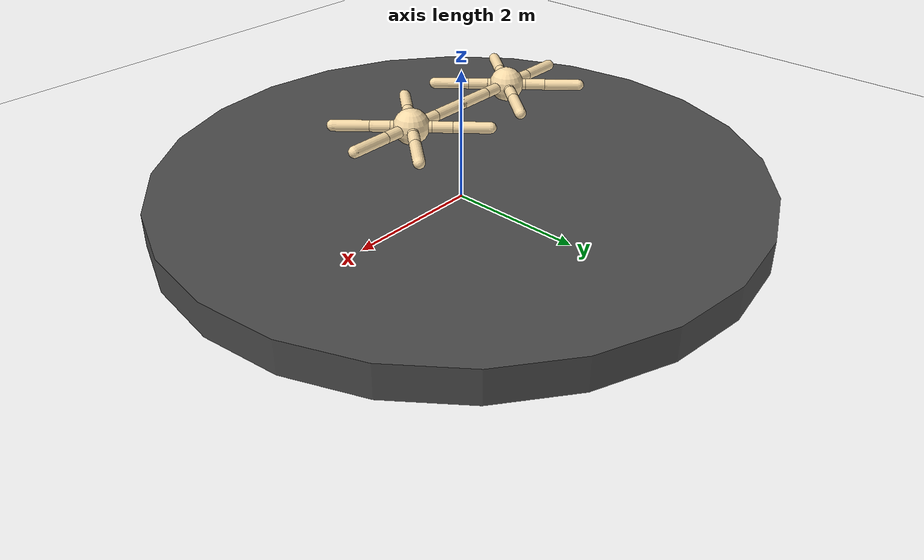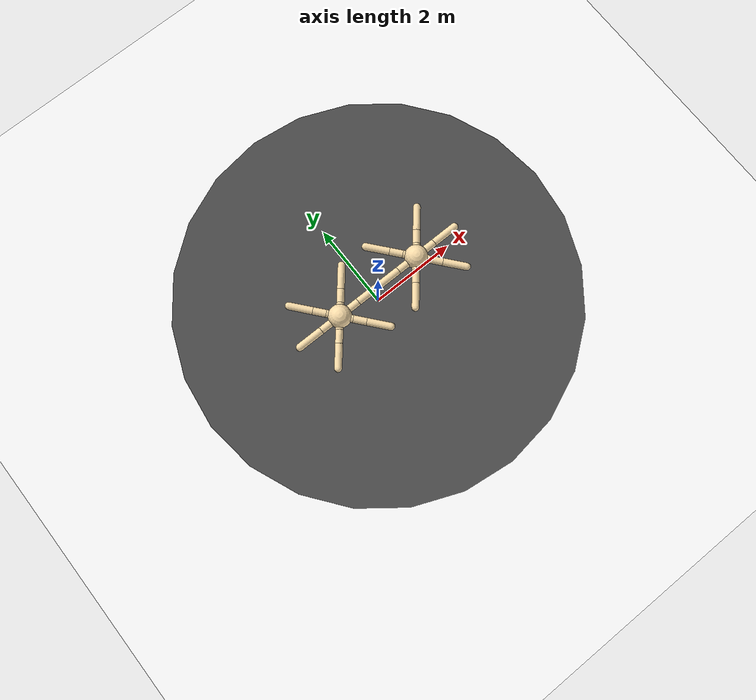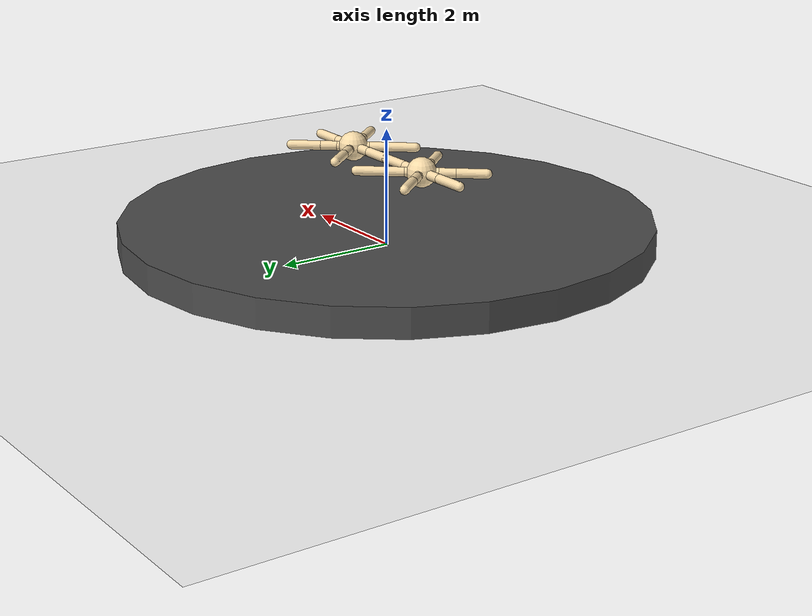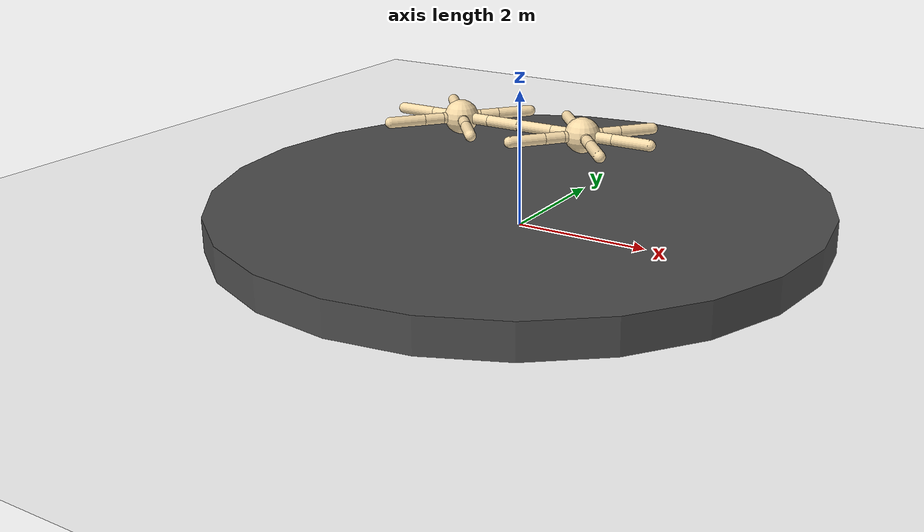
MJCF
<mujoco model="mutiagent_world">
  <compiler angle="degree" coordinate="local" inertiafromgeom="true" />
  <option integrator="RK4" timestep="0.003" solver="PGS" iterations="1000" />
  <default>
    <joint armature="1" damping="1" limited="true" />
  <default class="agent0"><geom conaffinity="0" condim="3" density="5.0" friction="1 0.5 0.5" margin="0.01" rgba="0.98 0.87 0.67 1" material="geom" contype="1" />
    <motor ctrllimited="true" ctrlrange="-1. 1." />
    <joint armature="1" damping="1" limited="true" />
  </default><default class="agent1"><geom conaffinity="1" condim="3" density="5.0" friction="1 0.5 0.5" margin="0.01" rgba="0.98 0.87 0.67 1" material="geom" contype="0" />
    <motor ctrllimited="true" ctrlrange="-1. 1." />
    <joint armature="1" damping="1" limited="true" />
  </default></default>
  <visual>
    <headlight ambient=".1 .1 .1" diffuse=".6 .6 .6" specular="0.3 0.3 0.3" />
    <map znear=".01" />
    <quality shadowsize="16384" />
  </visual>
  <asset>
    <texture builtin="gradient" height="100" rgb1="1 1 1" rgb2="0 0 0" type="skybox" width="100" />
    <texture builtin="flat" height="1278" mark="cross" markrgb="0 0 0" name="texgeom" random="0.01" rgb1="0.8 0.6 0.4" rgb2="0.8 0.6 0.4" type="cube" width="127" />
    <texture builtin="checker" height="100" name="texplane" rgb1="0.5 0.5 0.5" rgb2="0.5 0.5 0.5" type="2d" width="100" markrgb="0.2 0.2 0.2" mark="edge" />
    <texture name="MatPlane" type="2d" builtin="checker" rgb1=".5 .5 .5" rgb2=".5 .5 .5" width="300" height="300" mark="edge" markrgb="0.1 0.1 0.1" />
    <material name="MatPlane" texture="MatPlane" texrepeat="2 2" texuniform="true" reflectance=".2" />
    <material name="geom" texture="texgeom" texuniform="true" />
  </asset>
  <worldbody>
    <light cutoff="100" diffuse="1 1 1" dir="-0 0 -1.3" directional="true" exponent="1" pos="0 0 1.3" specular=".1 .1 .1" />
    <geom contype="1" conaffinity="1" friction="1 .1 .1" condim="3" material="MatPlane" name="floor" pos="0 0 0" rgba="1 1 1 1" size="20 20 0.125" type="plane" />
    <geom fromto="4 -5 0  4 +5 0" name="rightgoal" rgba="0.6 0.0 0.0 0" size=".03" type="cylinder" />
    <geom fromto="-4 -5 0  -4 +5 0" name="leftgoal" rgba="0.6 0.0 0.0 0" size=".03" type="cylinder" />
    <geom conaffinity="1" condim="3" contype="1" friction="1 .1 .1" name="arena" size="4.5 .25" type="cylinder" pos="0 0 0.25" rgba="0.3 0.3 0.3 1" />
  <body name="agent0/0" pos="-1 0 1.5" euler="0 0 0">
      <geom pos="0 0 0" size="0.25" type="sphere" class="agent0" name="agent0/anon6612927343" />
      <joint armature="0" damping="0" limited="false" margin="0.01" name="agent0/0_joint" pos="0 0 0" type="free" />

      <body name="agent0/1" pos="0 0 0">
        <geom fromto="0 0 0 0.18 0.215 0" size="0.08" type="capsule" class="agent0" name="agent0/anon2520077080" />
        <body name="agent0/11" pos="0.18 0.215 0">
          <joint axis="0 0 1" name="agent0/11_joint" pos="0 0 0" range="-30 30" type="hinge" />
          <geom fromto="0 0 0 0.18 0.215 0" size="0.08" type="capsule" class="agent0" name="agent0/anon8440707289" />
          <body name="agent0/111" pos="0.18 0.215 0">
            <joint axis="-1 1 0" name="agent0/111_joint" pos="0 0 0" range="30 70" type="hinge" />
            <geom fromto="0 0 0 0.324 0.387 0" size="0.08" type="capsule" class="agent0" name="agent0/anon1272485021" />
          </body>
        </body>
      </body>

      <body name="agent0/2" pos="0 0 0">
        <geom fromto="0 0 0 -0.18 0.215 0" size="0.08" type="capsule" class="agent0" name="agent0/anon9299750701" />
        <body name="agent0/12" pos="-0.18 0.215 0">
          <joint axis="0 0 1" name="agent0/12_joint" pos="0 0 0" range="-30 30" type="hinge" />
          <geom fromto="0 0 0 -0.18 0.215 0" size="0.08" type="capsule" class="agent0" name="agent0/anon67157849" />
          <body name="agent0/112" pos="-0.18 0.215 0">
            <joint axis="1 1 0" name="agent0/112_joint" pos="0 0 0" range="-70 -30" type="hinge" />
            <geom fromto="0 0 0 -0.324 0.387 0" size="0.08" type="capsule" class="agent0" name="agent0/anon9443956211" />
          </body>
        </body>
      </body>

      <body name="agent0/3" pos="0 0 0">
        <geom fromto="0 0 0 -0.2 0 0" size="0.08" type="capsule" class="agent0" name="agent0/anon3055190408" />
        <body name="agent0/13" pos="-0.2 0 0">
          <joint axis="0 0 1" name="agent0/13_joint" pos="0 0 0" range="-30 30" type="hinge" />
          <geom fromto="0 0 0 -0.275 0 0" size="0.08" type="capsule" class="agent0" name="agent0/anon2602578299" />
          <body name="agent0/113" pos="-0.275 0 0">
            <joint axis="0 1 0" name="agent0/113_joint" pos="0 0 0" range="-70 -30" type="hinge" />
            <geom fromto="0 0 0 -0.55 0 0" size="0.08" type="capsule" class="agent0" name="agent0/anon3978431978" />
          </body>
        </body>
      </body>

      <body name="agent0/4" pos="0 0 0">
        <geom fromto="0 0 0 0.2 0 0" size="0.08" type="capsule" class="agent0" name="agent0/anon3929721884" />
        <body name="agent0/14" pos="0.2 0 0">
          <joint axis="0 0 1" name="agent0/14_joint" pos="0 0 0" range="-30 30" type="hinge" />
          <geom fromto="0 0 0 0.275 0 0" size="0.08" type="capsule" class="agent0" name="agent0/anon4704750625" />
          <body name="agent0/114" pos="0.275 0 0">
            <joint axis="0 1 0" name="agent0/114_joint" pos="0 0 0" range="30 70" type="hinge" />
            <geom fromto="0 0 0 0.55 0 0" size="0.08" type="capsule" class="agent0" name="agent0/anon1644658403" />
          </body>
        </body>
      </body>

      <body name="agent0/5" pos="0 0 0">
        <geom fromto="0 0 0 -0.18 -0.215 0" size="0.08" type="capsule" class="agent0" name="agent0/anon4173471663" />
        <body name="agent0/15" pos="-0.18 -0.215 0">
          <joint axis="0 0 1" name="agent0/15_joint" pos="0 0 0" range="-30 30" type="hinge" />
          <geom fromto="0 0 0 -0.18 -0.215 0" size="0.08" type="capsule" class="agent0" name="agent0/anon7941024387" />
          <body name="agent0/115" pos="-0.18 -0.215 0">
            <joint axis="-1 1 0" name="agent0/115_joint" pos="0 0 0" range="-70 -30" type="hinge" />
            <geom fromto="0 0 0 -0.324 -0.387 0" size="0.08" type="capsule" class="agent0" name="agent0/anon3099804677" />
          </body>
        </body>
      </body>

      <body name="agent0/6" pos="0 0 0">
        <geom fromto="0 0 0 0.18 -0.215 0" size="0.08" type="capsule" class="agent0" name="agent0/anon5308514807" />
        <body name="agent0/16" pos="0.18 -0.215 0">
          <joint axis="0 0 1" name="agent0/16_joint" pos="0 0 0" range="-30 30" type="hinge" />
          <geom fromto="0 0 0 0.18 -0.215 0" size="0.08" type="capsule" class="agent0" name="agent0/anon9689739662" />
          <body name="agent0/116" pos="0.18 -0.215 0">
            <joint axis="1 1 0" name="agent0/116_joint" pos="0 0 0" range="30 70" type="hinge" />
            <geom fromto="0 0 0 0.324 -0.387 0" size="0.08" type="capsule" class="agent0" name="agent0/anon8763595547" />
          </body>
        </body>
      </body>
    </body>

  <body name="agent1/0" pos="1 0 1.5" euler="0 0 180">
      <geom pos="0 0 0" size="0.25" type="sphere" class="agent1" name="agent1/anon3052273871" />
      <joint armature="0" damping="0" limited="false" margin="0.01" name="agent1/0_joint" pos="0 0 0" type="free" />

      <body name="agent1/1" pos="0 0 0">
        <geom fromto="0 0 0 0.18 0.215 0" size="0.08" type="capsule" class="agent1" name="agent1/anon9066207066" />
        <body name="agent1/11" pos="0.18 0.215 0">
          <joint axis="0 0 1" name="agent1/11_joint" pos="0 0 0" range="-30 30" type="hinge" />
          <geom fromto="0 0 0 0.18 0.215 0" size="0.08" type="capsule" class="agent1" name="agent1/anon6181903228" />
          <body name="agent1/111" pos="0.18 0.215 0">
            <joint axis="-1 1 0" name="agent1/111_joint" pos="0 0 0" range="30 70" type="hinge" />
            <geom fromto="0 0 0 0.324 0.387 0" size="0.08" type="capsule" class="agent1" name="agent1/anon866377395" />
          </body>
        </body>
      </body>

      <body name="agent1/2" pos="0 0 0">
        <geom fromto="0 0 0 -0.18 0.215 0" size="0.08" type="capsule" class="agent1" name="agent1/anon4893391333" />
        <body name="agent1/12" pos="-0.18 0.215 0">
          <joint axis="0 0 1" name="agent1/12_joint" pos="0 0 0" range="-30 30" type="hinge" />
          <geom fromto="0 0 0 -0.18 0.215 0" size="0.08" type="capsule" class="agent1" name="agent1/anon2318599823" />
          <body name="agent1/112" pos="-0.18 0.215 0">
            <joint axis="1 1 0" name="agent1/112_joint" pos="0 0 0" range="-70 -30" type="hinge" />
            <geom fromto="0 0 0 -0.324 0.387 0" size="0.08" type="capsule" class="agent1" name="agent1/anon9462075933" />
          </body>
        </body>
      </body>

      <body name="agent1/3" pos="0 0 0">
        <geom fromto="0 0 0 -0.2 0 0" size="0.08" type="capsule" class="agent1" name="agent1/anon8076547868" />
        <body name="agent1/13" pos="-0.2 0 0">
          <joint axis="0 0 1" name="agent1/13_joint" pos="0 0 0" range="-30 30" type="hinge" />
          <geom fromto="0 0 0 -0.275 0 0" size="0.08" type="capsule" class="agent1" name="agent1/anon6976547498" />
          <body name="agent1/113" pos="-0.275 0 0">
            <joint axis="0 1 0" name="agent1/113_joint" pos="0 0 0" range="-70 -30" type="hinge" />
            <geom fromto="0 0 0 -0.55 0 0" size="0.08" type="capsule" class="agent1" name="agent1/anon1269737022" />
          </body>
        </body>
      </body>

      <body name="agent1/4" pos="0 0 0">
        <geom fromto="0 0 0 0.2 0 0" size="0.08" type="capsule" class="agent1" name="agent1/anon453094389" />
        <body name="agent1/14" pos="0.2 0 0">
          <joint axis="0 0 1" name="agent1/14_joint" pos="0 0 0" range="-30 30" type="hinge" />
          <geom fromto="0 0 0 0.275 0 0" size="0.08" type="capsule" class="agent1" name="agent1/anon6255768348" />
          <body name="agent1/114" pos="0.275 0 0">
            <joint axis="0 1 0" name="agent1/114_joint" pos="0 0 0" range="30 70" type="hinge" />
            <geom fromto="0 0 0 0.55 0 0" size="0.08" type="capsule" class="agent1" name="agent1/anon8088627134" />
          </body>
        </body>
      </body>

      <body name="agent1/5" pos="0 0 0">
        <geom fromto="0 0 0 -0.18 -0.215 0" size="0.08" type="capsule" class="agent1" name="agent1/anon9982985856" />
        <body name="agent1/15" pos="-0.18 -0.215 0">
          <joint axis="0 0 1" name="agent1/15_joint" pos="0 0 0" range="-30 30" type="hinge" />
          <geom fromto="0 0 0 -0.18 -0.215 0" size="0.08" type="capsule" class="agent1" name="agent1/anon4819331063" />
          <body name="agent1/115" pos="-0.18 -0.215 0">
            <joint axis="-1 1 0" name="agent1/115_joint" pos="0 0 0" range="-70 -30" type="hinge" />
            <geom fromto="0 0 0 -0.324 -0.387 0" size="0.08" type="capsule" class="agent1" name="agent1/anon1168799105" />
          </body>
        </body>
      </body>

      <body name="agent1/6" pos="0 0 0">
        <geom fromto="0 0 0 0.18 -0.215 0" size="0.08" type="capsule" class="agent1" name="agent1/anon2781807899" />
        <body name="agent1/16" pos="0.18 -0.215 0">
          <joint axis="0 0 1" name="agent1/16_joint" pos="0 0 0" range="-30 30" type="hinge" />
          <geom fromto="0 0 0 0.18 -0.215 0" size="0.08" type="capsule" class="agent1" name="agent1/anon4297202297" />
          <body name="agent1/116" pos="0.18 -0.215 0">
            <joint axis="1 1 0" name="agent1/116_joint" pos="0 0 0" range="30 70" type="hinge" />
            <geom fromto="0 0 0 0.324 -0.387 0" size="0.08" type="capsule" class="agent1" name="agent1/anon1309025539" />
          </body>
        </body>
      </body>
    </body>

  </worldbody>
<actuator>
    <motor ctrllimited="true" ctrlrange="-1.0 1.0" joint="agent0/11_joint" gear="150" name="agent0/11_joint" class="agent0" />
    <motor ctrllimited="true" ctrlrange="-1.0 1.0" joint="agent0/111_joint" gear="150" name="agent0/111_joint" class="agent0" />
    <motor ctrllimited="true" ctrlrange="-1.0 1.0" joint="agent0/12_joint" gear="150" name="agent0/12_joint" class="agent0" />
    <motor ctrllimited="true" ctrlrange="-1.0 1.0" joint="agent0/112_joint" gear="150" name="agent0/112_joint" class="agent0" />
    <motor ctrllimited="true" ctrlrange="-1.0 1.0" joint="agent0/13_joint" gear="150" name="agent0/13_joint" class="agent0" />
    <motor ctrllimited="true" ctrlrange="-1.0 1.0" joint="agent0/113_joint" gear="150" name="agent0/113_joint" class="agent0" />
    <motor ctrllimited="true" ctrlrange="-1.0 1.0" joint="agent0/14_joint" gear="150" name="agent0/14_joint" class="agent0" />
    <motor ctrllimited="true" ctrlrange="-1.0 1.0" joint="agent0/114_joint" gear="150" name="agent0/114_joint" class="agent0" />
    <motor ctrllimited="true" ctrlrange="-1.0 1.0" joint="agent0/15_joint" gear="150" name="agent0/15_joint" class="agent0" />
    <motor ctrllimited="true" ctrlrange="-1.0 1.0" joint="agent0/115_joint" gear="150" name="agent0/115_joint" class="agent0" />
    <motor ctrllimited="true" ctrlrange="-1.0 1.0" joint="agent0/16_joint" gear="150" name="agent0/16_joint" class="agent0" />
    <motor ctrllimited="true" ctrlrange="-1.0 1.0" joint="agent0/116_joint" gear="150" name="agent0/116_joint" class="agent0" />
  <motor ctrllimited="true" ctrlrange="-1.0 1.0" joint="agent1/11_joint" gear="150" name="agent1/11_joint" class="agent1" />
    <motor ctrllimited="true" ctrlrange="-1.0 1.0" joint="agent1/111_joint" gear="150" name="agent1/111_joint" class="agent1" />
    <motor ctrllimited="true" ctrlrange="-1.0 1.0" joint="agent1/12_joint" gear="150" name="agent1/12_joint" class="agent1" />
    <motor ctrllimited="true" ctrlrange="-1.0 1.0" joint="agent1/112_joint" gear="150" name="agent1/112_joint" class="agent1" />
    <motor ctrllimited="true" ctrlrange="-1.0 1.0" joint="agent1/13_joint" gear="150" name="agent1/13_joint" class="agent1" />
    <motor ctrllimited="true" ctrlrange="-1.0 1.0" joint="agent1/113_joint" gear="150" name="agent1/113_joint" class="agent1" />
    <motor ctrllimited="true" ctrlrange="-1.0 1.0" joint="agent1/14_joint" gear="150" name="agent1/14_joint" class="agent1" />
    <motor ctrllimited="true" ctrlrange="-1.0 1.0" joint="agent1/114_joint" gear="150" name="agent1/114_joint" class="agent1" />
    <motor ctrllimited="true" ctrlrange="-1.0 1.0" joint="agent1/15_joint" gear="150" name="agent1/15_joint" class="agent1" />
    <motor ctrllimited="true" ctrlrange="-1.0 1.0" joint="agent1/115_joint" gear="150" name="agent1/115_joint" class="agent1" />
    <motor ctrllimited="true" ctrlrange="-1.0 1.0" joint="agent1/16_joint" gear="150" name="agent1/16_joint" class="agent1" />
    <motor ctrllimited="true" ctrlrange="-1.0 1.0" joint="agent1/116_joint" gear="150" name="agent1/116_joint" class="agent1" />
  </actuator>

</mujoco>
